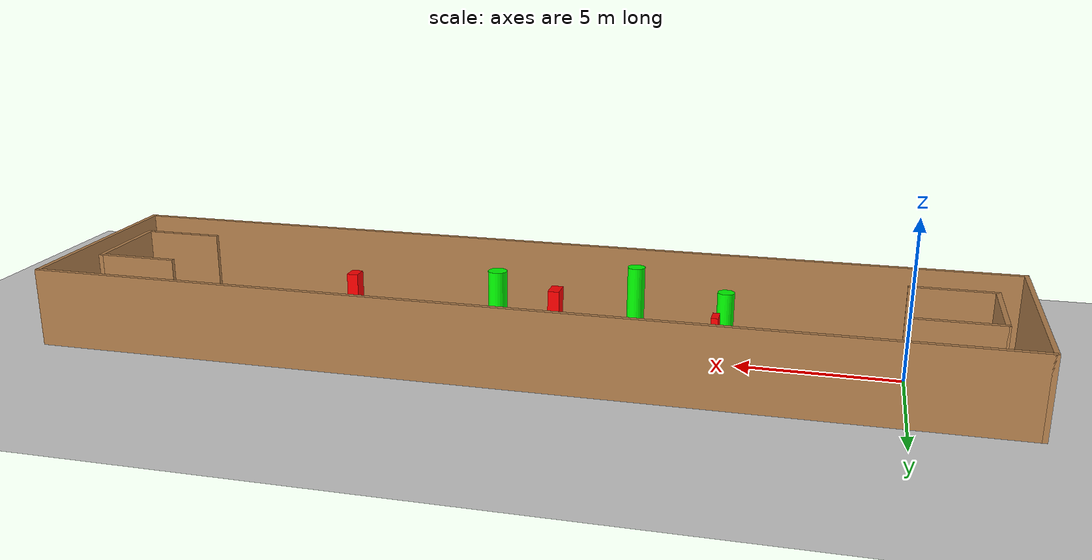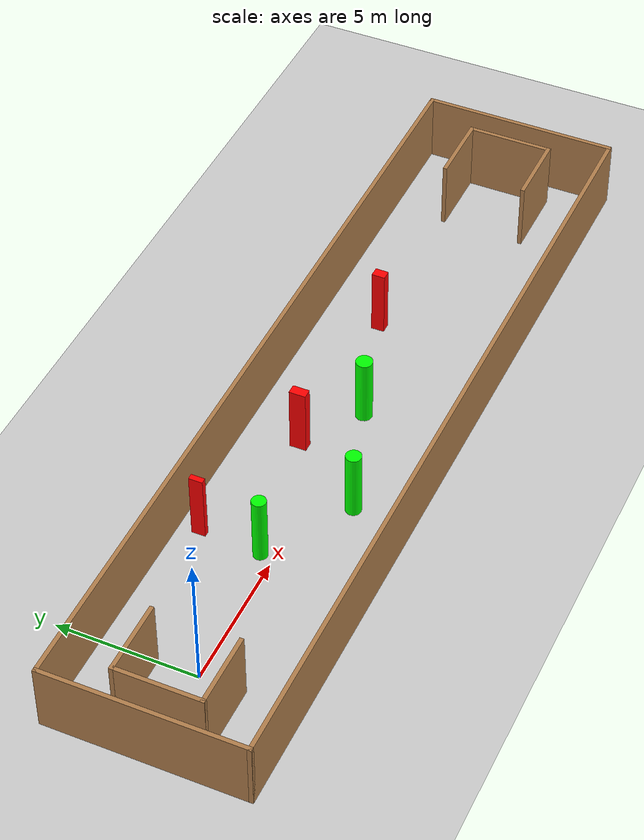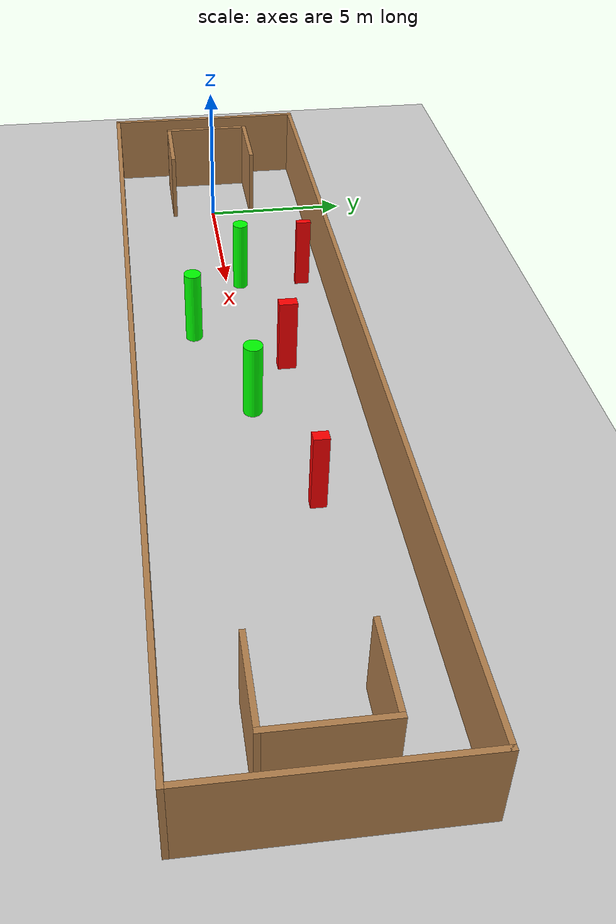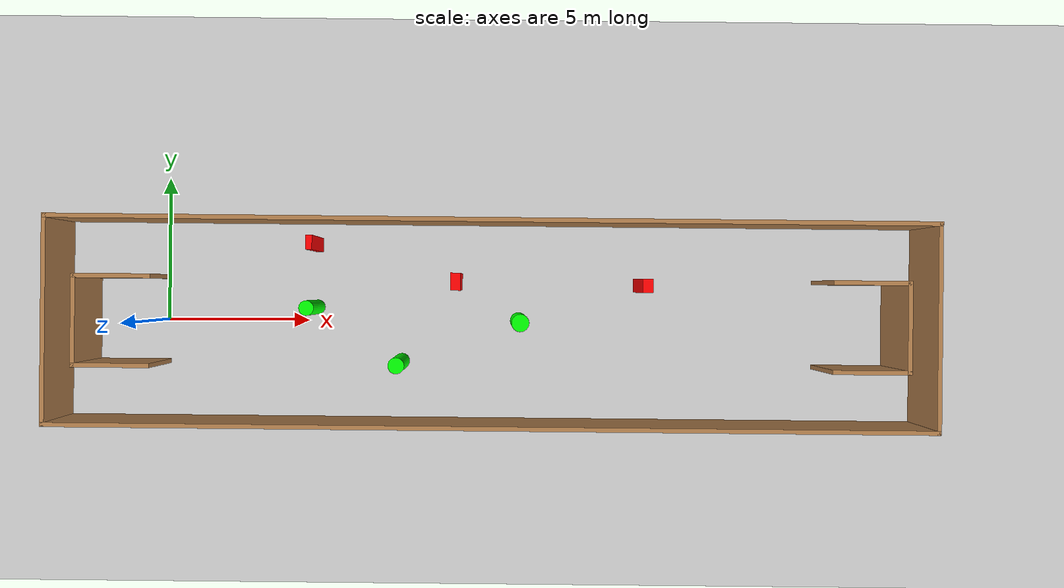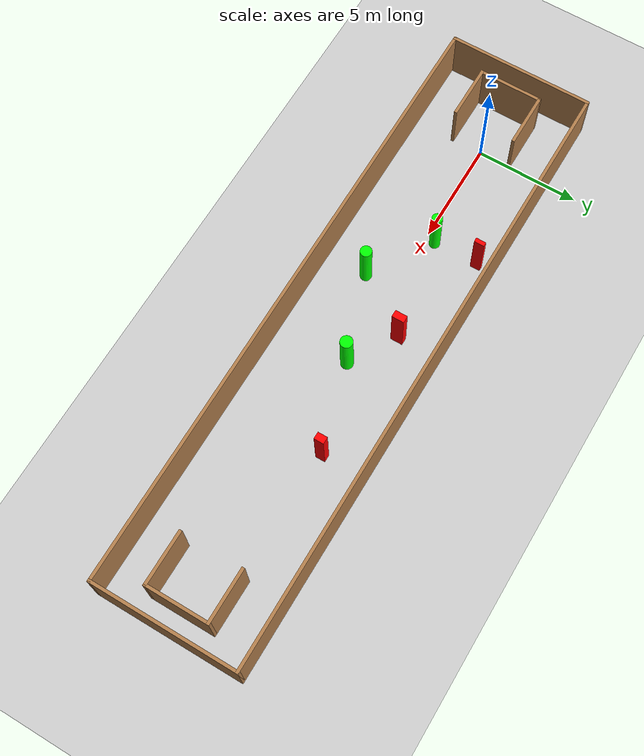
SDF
<sdf version="1.7">
 <world name="default">
  <light name="sun" type="directional">
   <pose>0 0 10 0 -0 0</pose>
   <diffuse>0.8 0.8 0.8 1</diffuse>
   <specular>0.2 0.2 0.2 1</specular>
   <attenuation>
    <range>1000</range>
    <constant>0.9</constant>
    <linear>0.01</linear>
    <quadratic>0.001</quadratic>
   </attenuation>
   <direction>-0.5 0.1 -0.9</direction>
   <spot><inner_angle>0</inner_angle><outer_angle>0</outer_angle><falloff>0</falloff></spot>
  </light>
  <model name="ground_plane">
   <static>1</static>
   <link name="link">
    <collision name="collision">
     <geometry><plane><normal>0 0 1</normal><size>100 100</size></plane></geometry>
     <surface>
      <contact><collide_bitmask>65535</collide_bitmask></contact>
      <friction><ode><mu>100</mu><mu2>50</mu2></ode></friction>
     </surface>
    </collision>
    <visual name="visual">
     <cast_shadows>0</cast_shadows>
     <geometry><plane><normal>0 0 1</normal><size>100 100</size></plane></geometry>
     <material>
      <script><uri>file://media/materials/scripts/gazebo.material</uri><name>Gazebo/Grey</name></script>
     </material>
    </visual>
   </link>
  </model>
  <gravity>0 0 -9.8</gravity>
  <magnetic_field>6e-06 2.3e-05 -4.2e-05</magnetic_field>
  <atmosphere type="adiabatic"/>
  <physics type="ode">
   <max_step_size>0.001</max_step_size>
   <real_time_factor>1</real_time_factor>
   <real_time_update_rate>1000</real_time_update_rate>
  </physics>
  <scene><ambient>0.4 0.4 0.4 1</ambient><background>0.7 0.7 0.7 1</background><shadows>1</shadows></scene>
  <spherical_coordinates>
   <surface_model>EARTH_WGS84</surface_model>
   <latitude_deg>0</latitude_deg>
   <longitude_deg>0</longitude_deg>
   <elevation>0</elevation>
   <heading_deg>0</heading_deg>
  </spherical_coordinates>
  <model name="my_base_walls">
   <link name="Wall_0">
    <collision name="Wall_0_Collision">
     <geometry><box><size>7.15 0.15 2.5</size></box></geometry>
     <pose>0 0 1.25 0 -0 0</pose>
    </collision>
    <visual name="Wall_0_Visual">
     <pose>0 0 1.25 0 -0 0</pose>
     <geometry><box><size>7.15 0.15 2.5</size></box></geometry>
     <material>
      <script><uri>file://media/materials/scripts/gazebo.material</uri><name>Gazebo/Wood</name></script>
      <ambient>1 1 1 1</ambient>
     </material>
     <meta><layer>0</layer></meta>
    </visual>
    <pose>-15 0 0 0 -0 1.5708</pose>
   </link>
   <link name="Wall_10">
    <collision name="Wall_10_Collision">
     <geometry><box><size>2.65 0.15 2.5</size></box></geometry>
     <pose>0 0 1.25 0 -0 0</pose>
    </collision>
    <visual name="Wall_10_Visual">
     <pose>0 0 1.25 0 -0 0</pose>
     <geometry><box><size>2.65 0.15 2.5</size></box></geometry>
     <material>
      <script><uri>file://media/materials/scripts/gazebo.material</uri><name>Gazebo/Wood</name></script>
      <ambient>1 1 1 1</ambient>
     </material>
     <meta><layer>0</layer></meta>
    </visual>
    <pose>-12.75 -1.5 0 0 -0 0</pose>
   </link>
   <link name="Wall_12">
    <collision name="Wall_12_Collision">
     <geometry><box><size>2.65 0.15 2.5</size></box></geometry>
     <pose>0 0 1.25 0 -0 0</pose>
    </collision>
    <visual name="Wall_12_Visual">
     <pose>0 0 1.25 0 -0 0</pose>
     <geometry><box><size>2.65 0.15 2.5</size></box></geometry>
     <material>
      <script><uri>file://media/materials/scripts/gazebo.material</uri><name>Gazebo/Wood</name></script>
      <ambient>1 1 1 1</ambient>
     </material>
     <meta><layer>0</layer></meta>
    </visual>
    <pose>-12.75 1.5 0 0 -0 0</pose>
   </link>
   <link name="Wall_14">
    <collision name="Wall_14_Collision">
     <geometry><box><size>3.15 0.15 2.5</size></box></geometry>
     <pose>0 0 1.25 0 -0 0</pose>
    </collision>
    <visual name="Wall_14_Visual">
     <pose>0 0 1.25 0 -0 0</pose>
     <geometry><box><size>3.15 0.15 2.5</size></box></geometry>
     <material>
      <script><uri>file://media/materials/scripts/gazebo.material</uri><name>Gazebo/Wood</name></script>
      <ambient>1 1 1 1</ambient>
     </material>
     <meta><layer>0</layer></meta>
    </visual>
    <pose>14 0 0 0 -0 -1.5708</pose>
   </link>
   <link name="Wall_15">
    <collision name="Wall_15_Collision">
     <geometry><box><size>2.65 0.15 2.5</size></box></geometry>
     <pose>0 0 1.25 0 -0 0</pose>
    </collision>
    <visual name="Wall_15_Visual">
     <pose>0 0 1.25 0 -0 0</pose>
     <geometry><box><size>2.65 0.15 2.5</size></box></geometry>
     <material>
      <script><uri>file://media/materials/scripts/gazebo.material</uri><name>Gazebo/Wood</name></script>
      <ambient>1 1 1 1</ambient>
     </material>
     <meta><layer>0</layer></meta>
    </visual>
    <pose>12.75 -1.5 0 0 -0 3.14159</pose>
   </link>
   <link name="Wall_17">
    <collision name="Wall_17_Collision">
     <geometry><box><size>2.65 0.15 2.5</size></box></geometry>
     <pose>0 0 1.25 0 -0 0</pose>
    </collision>
    <visual name="Wall_17_Visual">
     <pose>0 0 1.25 0 -0 0</pose>
     <geometry><box><size>2.65 0.15 2.5</size></box></geometry>
     <material>
      <script><uri>file://media/materials/scripts/gazebo.material</uri><name>Gazebo/Wood</name></script>
      <ambient>1 1 1 1</ambient>
     </material>
     <meta><layer>0</layer></meta>
    </visual>
    <pose>12.75 1.5 0 0 -0 3.14159</pose>
   </link>
   <link name="Wall_2">
    <collision name="Wall_2_Collision">
     <geometry><box><size>30.15 0.15 2.5</size></box></geometry>
     <pose>0 0 1.25 0 -0 0</pose>
    </collision>
    <visual name="Wall_2_Visual">
     <pose>0 0 1.25 0 -0 0</pose>
     <geometry><box><size>30.15 0.15 2.5</size></box></geometry>
     <material>
      <script><uri>file://media/materials/scripts/gazebo.material</uri><name>Gazebo/Wood</name></script>
      <ambient>1 1 1 1</ambient>
     </material>
     <meta><layer>0</layer></meta>
    </visual>
    <pose>-0 -3.5 0 0 -0 0</pose>
   </link>
   <link name="Wall_4">
    <collision name="Wall_4_Collision">
     <geometry><box><size>30.15 0.15 2.5</size></box></geometry>
     <pose>0 0 1.25 0 -0 0</pose>
    </collision>
    <visual name="Wall_4_Visual">
     <pose>0 0 1.25 0 -0 0</pose>
     <geometry><box><size>30.15 0.15 2.5</size></box></geometry>
     <material>
      <script><uri>file://media/materials/scripts/gazebo.material</uri><name>Gazebo/Wood</name></script>
      <ambient>1 1 1 1</ambient>
     </material>
     <meta><layer>0</layer></meta>
    </visual>
    <pose>-0 3.5 0 0 -0 0</pose>
   </link>
   <link name="Wall_6">
    <collision name="Wall_6_Collision">
     <geometry><box><size>7.15 0.15 2.5</size></box></geometry>
     <pose>0 0 1.25 0 -0 0</pose>
    </collision>
    <visual name="Wall_6_Visual">
     <pose>0 0 1.25 0 -0 0</pose>
     <geometry><box><size>7.15 0.15 2.5</size></box></geometry>
     <material>
      <script><uri>file://media/materials/scripts/gazebo.material</uri><name>Gazebo/Wood</name></script>
      <ambient>1 1 1 1</ambient>
     </material>
     <meta><layer>0</layer></meta>
    </visual>
    <pose>15 0 0 0 -0 -1.5708</pose>
   </link>
   <link name="Wall_9">
    <collision name="Wall_9_Collision">
     <geometry><box><size>3.15 0.15 2.5</size></box></geometry>
     <pose>0 0 1.25 0 -0 0</pose>
    </collision>
    <visual name="Wall_9_Visual">
     <pose>0 0 1.25 0 -0 0</pose>
     <geometry><box><size>3.15 0.15 2.5</size></box></geometry>
     <material>
      <script><uri>file://media/materials/scripts/gazebo.material</uri><name>Gazebo/Wood</name></script>
      <ambient>1 1 1 1</ambient>
     </material>
     <meta><layer>0</layer></meta>
    </visual>
    <pose>-14 0 0 0 -0 -1.5708</pose>
   </link>
   <static>1</static>
   <pose>11.5 0 0 0 -0 0</pose>
  </model>
  <model name="cylinder1">
   <static>1</static>
   <link name="link">
    <inertial>
     <mass>1</mass>
     <inertia><ixx>0.5</ixx><ixy>0</ixy><ixz>0</ixz><iyy>0.5</iyy><iyz>0</iyz><izz>1</izz></inertia>
    </inertial>
    <collision name="collision">
     <geometry><cylinder><radius>0.2983946954068384</radius><length>2.5</length></cylinder></geometry>
    </collision>
    <visual name="visual">
     <geometry><cylinder><radius>0.2983946954068384</radius><length>2.5</length></cylinder></geometry>
     <material>
      <ambient>0 1 0 1</ambient>
      <diffuse>0 1 0 1</diffuse>
      <specular>0.1 0.1 0.1 1</specular>
      <emissive>0 0 0 0</emissive>
     </material>
    </visual>
   </link>
   <pose>12.467615363713254 0.04229872595943984 1.25 0 0 0</pose>
  </model>
  <model name="cylinder2">
   <static>1</static>
   <link name="link">
    <inertial>
     <mass>1</mass>
     <inertia><ixx>0.5</ixx><ixy>0</ixy><ixz>0</ixz><iyy>0.5</iyy><iyz>0</iyz><izz>1</izz></inertia>
    </inertial>
    <collision name="collision">
     <geometry><cylinder><radius>0.27498709842179936</radius><length>2.5</length></cylinder></geometry>
    </collision>
    <visual name="visual">
     <geometry><cylinder><radius>0.27498709842179936</radius><length>2.5</length></cylinder></geometry>
     <material>
      <ambient>0 1 0 1</ambient>
      <diffuse>0 1 0 1</diffuse>
      <specular>0.1 0.1 0.1 1</specular>
      <emissive>0 0 0 0</emissive>
     </material>
    </visual>
   </link>
   <pose>8.323577289407885 -1.4274337272861413 1.25 0 0 0</pose>
  </model>
  <model name="cylinder3">
   <static>1</static>
   <link name="link">
    <inertial>
     <mass>1</mass>
     <inertia><ixx>0.5</ixx><ixy>0</ixy><ixz>0</ixz><iyy>0.5</iyy><iyz>0</iyz><izz>1</izz></inertia>
    </inertial>
    <collision name="collision">
     <geometry><cylinder><radius>0.2540484636964142</radius><length>2.5</length></cylinder></geometry>
    </collision>
    <visual name="visual">
     <geometry><cylinder><radius>0.2540484636964142</radius><length>2.5</length></cylinder></geometry>
     <material>
      <ambient>0 1 0 1</ambient>
      <diffuse>0 1 0 1</diffuse>
      <specular>0.1 0.1 0.1 1</specular>
      <emissive>0 0 0 0</emissive>
     </material>
    </visual>
   </link>
   <pose>5.306220717007038 0.47492151537160066 1.25 0 0 0</pose>
  </model>
  <model name="box1">
   <static>1</static>
   <link name="link">
    <inertial>
     <mass>1</mass>
     <inertia><ixx>0.083</ixx><ixy>0</ixy><ixz>0</ixz><iyy>0.083</iyy><iyz>0</iyz><izz>0.083</izz></inertia>
    </inertial>
    <collision name="collision">
     <geometry><box><size>0.34209654291254576 0.4691864720645374 2.5</size></box></geometry>
    </collision>
    <visual name="visual">
     <geometry><box><size>0.34209654291254576 0.4691864720645374 2.5</size></box></geometry>
     <material>
      <ambient>1 0 0 1</ambient>
      <diffuse>1 0 0 1</diffuse>
      <specular>0.1 0.1 0.1 1</specular>
      <emissive>0 0 0 0</emissive>
     </material>
    </visual>
    <sensor name="my_contact" type="contact">
     <contact><collision>box_collision</collision><topic>__default_topic__</topic></contact>
    </sensor>
   </link>
   <pose>16.721595475148447 1.333845857019286 1.25 0 0 0</pose>
  </model>
  <model name="box2">
   <static>1</static>
   <link name="link">
    <inertial>
     <mass>1</mass>
     <inertia><ixx>0.083</ixx><ixy>0</ixy><ixz>0</ixz><iyy>0.083</iyy><iyz>0</iyz><izz>0.083</izz></inertia>
    </inertial>
    <collision name="collision">
     <geometry><box><size>0.20427937808886043 0.49173210264539824 2.5</size></box></geometry>
    </collision>
    <visual name="visual">
     <geometry><box><size>0.20427937808886043 0.49173210264539824 2.5</size></box></geometry>
     <material>
      <ambient>1 0 0 1</ambient>
      <diffuse>1 0 0 1</diffuse>
      <specular>0.1 0.1 0.1 1</specular>
      <emissive>0 0 0 0</emissive>
     </material>
    </visual>
    <sensor name="my_contact" type="contact">
     <contact><collision>box_collision</collision><topic>__default_topic__</topic></contact>
    </sensor>
   </link>
   <pose>5.371898082383284 2.6805919667082687 1.25 0 0 0</pose>
  </model>
  <model name="box3">
   <static>1</static>
   <link name="link">
    <inertial>
     <mass>1</mass>
     <inertia><ixx>0.083</ixx><ixy>0</ixy><ixz>0</ixz><iyy>0.083</iyy><iyz>0</iyz><izz>0.083</izz></inertia>
    </inertial>
    <collision name="collision">
     <geometry><box><size>0.3418045220887037 0.5920991147479757 2.5</size></box></geometry>
    </collision>
    <visual name="visual">
     <geometry><box><size>0.3418045220887037 0.5920991147479757 2.5</size></box></geometry>
     <material>
      <ambient>1 0 0 1</ambient>
      <diffuse>1 0 0 1</diffuse>
      <specular>0.1 0.1 0.1 1</specular>
      <emissive>0 0 0 0</emissive>
     </material>
    </visual>
    <sensor name="my_contact" type="contact">
     <contact><collision>box_collision</collision><topic>__default_topic__</topic></contact>
    </sensor>
   </link>
   <pose>10.286053480891534 1.4074027301306842 1.25 0 0 0</pose>
  </model>
 </world>
</sdf>
